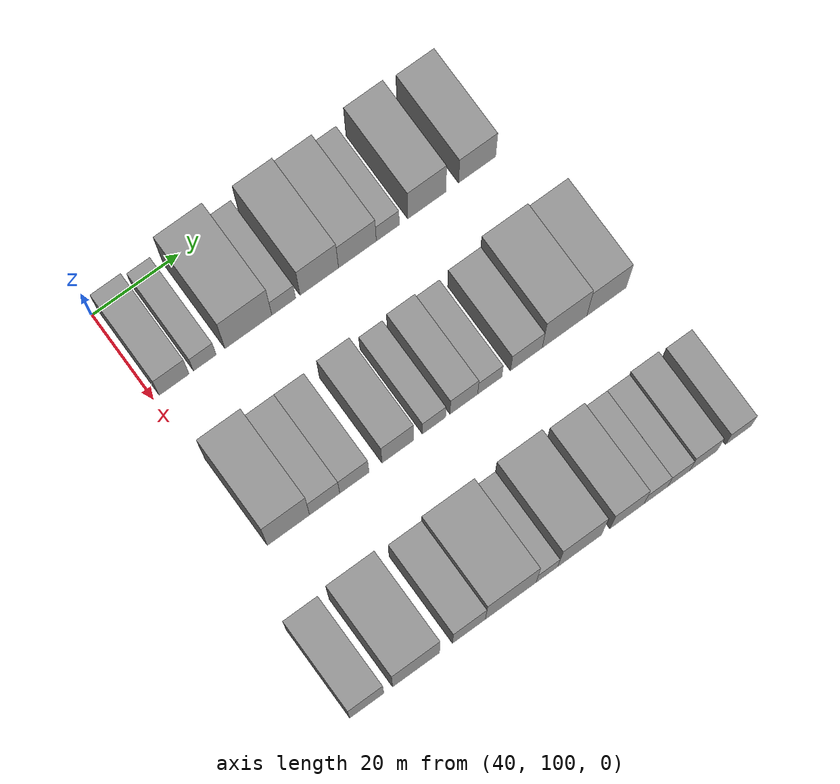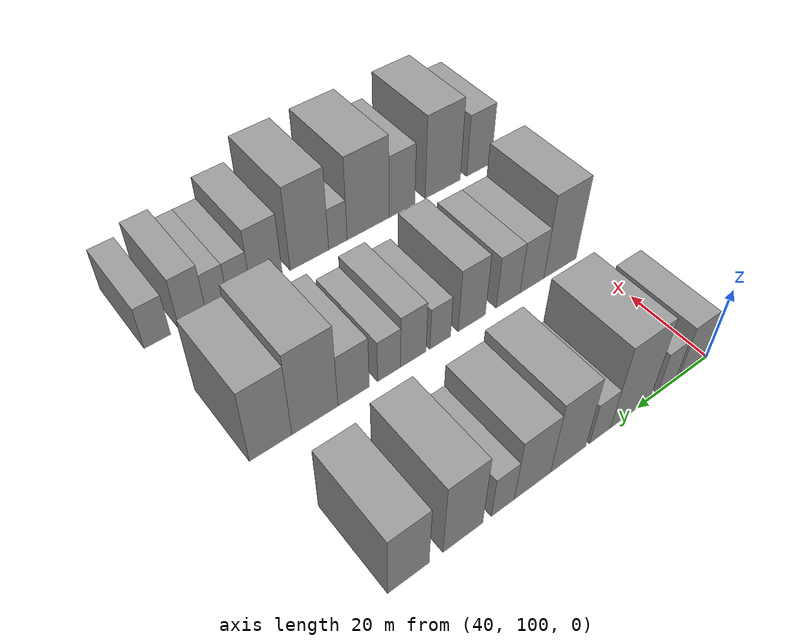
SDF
<sdf version="1.6">
 <world name="default">
  <model name="building_53">
   <static>1</static>
   <pose>50.0000 104.8211 0 0.000000 0.000000 0.000000</pose>
   <link name="link">
    <pose>0 0 7.50 0 0 0</pose>
    <collision name="collision"><geometry><box><size>20.0000 6.8952 15.0000</size></box></geometry></collision>
    <visual name="visual">
     <cast_shadows>0</cast_shadows>
     <geometry><box><size>20.0000 6.8952 15.0000</size></box></geometry>
     <material>
      <script>
       <uri>model://grey_wall/materials/scripts</uri>
       <uri>model://grey_wall/materials/textures</uri>
       <name>vrc/grey_wall</name>
      </script>
     </material>
    </visual>
   </link>
  </model>
  <model name="building_54">
   <static>1</static>
   <pose>50.0000 111.8903 0 0.000000 0.000000 0.000000</pose>
   <link name="link">
    <pose>0 0 6.00 0 0 0</pose>
    <collision name="collision"><geometry><box><size>20.0000 5.2433 12.0000</size></box></geometry></collision>
    <visual name="visual">
     <cast_shadows>0</cast_shadows>
     <geometry><box><size>20.0000 5.2433 12.0000</size></box></geometry>
     <material>
      <script>
       <uri>model://grey_wall/materials/scripts</uri>
       <uri>model://grey_wall/materials/textures</uri>
       <name>vrc/grey_wall</name>
      </script>
     </material>
    </visual>
   </link>
  </model>
  <model name="building_55">
   <static>1</static>
   <pose>50.0000 121.9380 0 0.000000 0.000000 0.000000</pose>
   <link name="link">
    <pose>0 0 12.00 0 0 0</pose>
    <collision name="collision"><geometry><box><size>20.0000 10.8521 24.0000</size></box></geometry></collision>
    <visual name="visual">
     <cast_shadows>0</cast_shadows>
     <geometry><box><size>20.0000 10.8521 24.0000</size></box></geometry>
     <material>
      <script>
       <uri>model://grey_wall/materials/scripts</uri>
       <uri>model://grey_wall/materials/textures</uri>
       <name>vrc/grey_wall</name>
      </script>
     </material>
    </visual>
   </link>
  </model>
  <model name="building_56">
   <static>1</static>
   <pose>50.0000 130.1348 0 0.000000 0.000000 0.000000</pose>
   <link name="link">
    <pose>0 0 6.00 0 0 0</pose>
    <collision name="collision"><geometry><box><size>20.0000 5.5414 12.0000</size></box></geometry></collision>
    <visual name="visual">
     <cast_shadows>0</cast_shadows>
     <geometry><box><size>20.0000 5.5414 12.0000</size></box></geometry>
     <material>
      <script>
       <uri>model://grey_wall/materials/scripts</uri>
       <uri>model://grey_wall/materials/textures</uri>
       <name>vrc/grey_wall</name>
      </script>
     </material>
    </visual>
   </link>
  </model>
  <model name="building_57">
   <static>1</static>
   <pose>50.0000 138.3855 0 0.000000 0.000000 0.000000</pose>
   <link name="link">
    <pose>0 0 10.50 0 0 0</pose>
    <collision name="collision"><geometry><box><size>20.0000 8.9601 21.0000</size></box></geometry></collision>
    <visual name="visual">
     <cast_shadows>0</cast_shadows>
     <geometry><box><size>20.0000 8.9601 21.0000</size></box></geometry>
     <material>
      <script>
       <uri>model://grey_wall/materials/scripts</uri>
       <uri>model://grey_wall/materials/textures</uri>
       <name>vrc/grey_wall</name>
      </script>
     </material>
    </visual>
   </link>
  </model>
  <model name="building_58">
   <static>1</static>
   <pose>50.0000 147.2667 0 0.000000 0.000000 0.000000</pose>
   <link name="link">
    <pose>0 0 9.00 0 0 0</pose>
    <collision name="collision"><geometry><box><size>20.0000 8.8022 18.0000</size></box></geometry></collision>
    <visual name="visual">
     <cast_shadows>0</cast_shadows>
     <geometry><box><size>20.0000 8.8022 18.0000</size></box></geometry>
     <material>
      <script>
       <uri>model://grey_wall/materials/scripts</uri>
       <uri>model://grey_wall/materials/textures</uri>
       <name>vrc/grey_wall</name>
      </script>
     </material>
    </visual>
   </link>
  </model>
  <model name="building_59">
   <static>1</static>
   <pose>50.0000 154.3495 0 0.000000 0.000000 0.000000</pose>
   <link name="link">
    <pose>0 0 6.00 0 0 0</pose>
    <collision name="collision"><geometry><box><size>20.0000 5.3634 12.0000</size></box></geometry></collision>
    <visual name="visual">
     <cast_shadows>0</cast_shadows>
     <geometry><box><size>20.0000 5.3634 12.0000</size></box></geometry>
     <material>
      <script>
       <uri>model://grey_wall/materials/scripts</uri>
       <uri>model://grey_wall/materials/textures</uri>
       <name>vrc/grey_wall</name>
      </script>
     </material>
    </visual>
   </link>
  </model>
  <model name="building_60">
   <static>1</static>
   <pose>50.0000 163.4841 0 0.000000 0.000000 0.000000</pose>
   <link name="link">
    <pose>0 0 10.50 0 0 0</pose>
    <collision name="collision"><geometry><box><size>20.0000 8.9057 21.0000</size></box></geometry></collision>
    <visual name="visual">
     <cast_shadows>0</cast_shadows>
     <geometry><box><size>20.0000 8.9057 21.0000</size></box></geometry>
     <material>
      <script>
       <uri>model://grey_wall/materials/scripts</uri>
       <uri>model://grey_wall/materials/textures</uri>
       <name>vrc/grey_wall</name>
      </script>
     </material>
    </visual>
   </link>
  </model>
  <model name="building_61">
   <static>1</static>
   <pose>50.0000 175.3051 0 0.000000 0.000000 0.000000</pose>
   <link name="link">
    <pose>0 0 9.00 0 0 0</pose>
    <collision name="collision"><geometry><box><size>20.0000 8.7363 18.0000</size></box></geometry></collision>
    <visual name="visual">
     <cast_shadows>0</cast_shadows>
     <geometry><box><size>20.0000 8.7363 18.0000</size></box></geometry>
     <material>
      <script>
       <uri>model://grey_wall/materials/scripts</uri>
       <uri>model://grey_wall/materials/textures</uri>
       <name>vrc/grey_wall</name>
      </script>
     </material>
    </visual>
   </link>
  </model>
  <model name="building_132">
   <static>1</static>
   <pose>85.0000 106.1662 0 0.000000 0.000000 0.000000</pose>
   <link name="link">
    <pose>0 0 12.00 0 0 0</pose>
    <collision name="collision"><geometry><box><size>20.0000 9.6960 24.0000</size></box></geometry></collision>
    <visual name="visual">
     <cast_shadows>0</cast_shadows>
     <geometry><box><size>20.0000 9.6960 24.0000</size></box></geometry>
     <material>
      <script>
       <uri>model://grey_wall/materials/scripts</uri>
       <uri>model://grey_wall/materials/textures</uri>
       <name>vrc/grey_wall</name>
      </script>
     </material>
    </visual>
   </link>
  </model>
  <model name="building_133">
   <static>1</static>
   <pose>85.0000 114.4758 0 0.000000 0.000000 0.000000</pose>
   <link name="link">
    <pose>0 0 7.50 0 0 0</pose>
    <collision name="collision"><geometry><box><size>20.0000 6.9232 15.0000</size></box></geometry></collision>
    <visual name="visual">
     <cast_shadows>0</cast_shadows>
     <geometry><box><size>20.0000 6.9232 15.0000</size></box></geometry>
     <material>
      <script>
       <uri>model://grey_wall/materials/scripts</uri>
       <uri>model://grey_wall/materials/textures</uri>
       <name>vrc/grey_wall</name>
      </script>
     </material>
    </visual>
   </link>
  </model>
  <model name="building_134">
   <static>1</static>
   <pose>85.0000 121.2999 0 0.000000 0.000000 0.000000</pose>
   <link name="link">
    <pose>0 0 7.50 0 0 0</pose>
    <collision name="collision"><geometry><box><size>20.0000 6.7249 15.0000</size></box></geometry></collision>
    <visual name="visual">
     <cast_shadows>0</cast_shadows>
     <geometry><box><size>20.0000 6.7249 15.0000</size></box></geometry>
     <material>
      <script>
       <uri>model://grey_wall/materials/scripts</uri>
       <uri>model://grey_wall/materials/textures</uri>
       <name>vrc/grey_wall</name>
      </script>
     </material>
    </visual>
   </link>
  </model>
  <model name="building_135">
   <static>1</static>
   <pose>85.0000 131.3365 0 0.000000 0.000000 0.000000</pose>
   <link name="link">
    <pose>0 0 9.00 0 0 0</pose>
    <collision name="collision"><geometry><box><size>20.0000 7.3485 18.0000</size></box></geometry></collision>
    <visual name="visual">
     <cast_shadows>0</cast_shadows>
     <geometry><box><size>20.0000 7.3485 18.0000</size></box></geometry>
     <material>
      <script>
       <uri>model://grey_wall/materials/scripts</uri>
       <uri>model://grey_wall/materials/textures</uri>
       <name>vrc/grey_wall</name>
      </script>
     </material>
    </visual>
   </link>
  </model>
  <model name="building_136">
   <static>1</static>
   <pose>85.0000 139.6968 0 0.000000 0.000000 0.000000</pose>
   <link name="link">
    <pose>0 0 6.00 0 0 0</pose>
    <collision name="collision"><geometry><box><size>20.0000 5.3721 12.0000</size></box></geometry></collision>
    <visual name="visual">
     <cast_shadows>0</cast_shadows>
     <geometry><box><size>20.0000 5.3721 12.0000</size></box></geometry>
     <material>
      <script>
       <uri>model://grey_wall/materials/scripts</uri>
       <uri>model://grey_wall/materials/textures</uri>
       <name>vrc/grey_wall</name>
      </script>
     </material>
    </visual>
   </link>
  </model>
  <model name="building_137">
   <static>1</static>
   <pose>85.0000 146.6025 0 0.000000 0.000000 0.000000</pose>
   <link name="link">
    <pose>0 0 7.50 0 0 0</pose>
    <collision name="collision"><geometry><box><size>20.0000 6.4392 15.0000</size></box></geometry></collision>
    <visual name="visual">
     <cast_shadows>0</cast_shadows>
     <geometry><box><size>20.0000 6.4392 15.0000</size></box></geometry>
     <material>
      <script>
       <uri>model://grey_wall/materials/scripts</uri>
       <uri>model://grey_wall/materials/textures</uri>
       <name>vrc/grey_wall</name>
      </script>
     </material>
    </visual>
   </link>
  </model>
  <model name="building_138">
   <static>1</static>
   <pose>85.0000 152.6341 0 0.000000 0.000000 0.000000</pose>
   <link name="link">
    <pose>0 0 6.00 0 0 0</pose>
    <collision name="collision"><geometry><box><size>20.0000 5.6239 12.0000</size></box></geometry></collision>
    <visual name="visual">
     <cast_shadows>0</cast_shadows>
     <geometry><box><size>20.0000 5.6239 12.0000</size></box></geometry>
     <material>
      <script>
       <uri>model://grey_wall/materials/scripts</uri>
       <uri>model://grey_wall/materials/textures</uri>
       <name>vrc/grey_wall</name>
      </script>
     </material>
    </visual>
   </link>
  </model>
  <model name="building_139">
   <static>1</static>
   <pose>85.0000 161.1597 0 0.000000 0.000000 0.000000</pose>
   <link name="link">
    <pose>0 0 7.50 0 0 0</pose>
    <collision name="collision"><geometry><box><size>20.0000 7.4273 15.0000</size></box></geometry></collision>
    <visual name="visual">
     <cast_shadows>0</cast_shadows>
     <geometry><box><size>20.0000 7.4273 15.0000</size></box></geometry>
     <material>
      <script>
       <uri>model://grey_wall/materials/scripts</uri>
       <uri>model://grey_wall/materials/textures</uri>
       <name>vrc/grey_wall</name>
      </script>
     </material>
    </visual>
   </link>
  </model>
  <model name="building_140">
   <static>1</static>
   <pose>85.0000 170.1048 0 0.000000 0.000000 0.000000</pose>
   <link name="link">
    <pose>0 0 12.00 0 0 0</pose>
    <collision name="collision"><geometry><box><size>20.0000 10.4631 24.0000</size></box></geometry></collision>
    <visual name="visual">
     <cast_shadows>0</cast_shadows>
     <geometry><box><size>20.0000 10.4631 24.0000</size></box></geometry>
     <material>
      <script>
       <uri>model://grey_wall/materials/scripts</uri>
       <uri>model://grey_wall/materials/textures</uri>
       <name>vrc/grey_wall</name>
      </script>
     </material>
    </visual>
   </link>
  </model>
  <model name="building_141">
   <static>1</static>
   <pose>85.0000 179.9588 0 0.000000 0.000000 0.000000</pose>
   <link name="link">
    <pose>0 0 10.50 0 0 0</pose>
    <collision name="collision"><geometry><box><size>20.0000 9.2449 21.0000</size></box></geometry></collision>
    <visual name="visual">
     <cast_shadows>0</cast_shadows>
     <geometry><box><size>20.0000 9.2449 21.0000</size></box></geometry>
     <material>
      <script>
       <uri>model://grey_wall/materials/scripts</uri>
       <uri>model://grey_wall/materials/textures</uri>
       <name>vrc/grey_wall</name>
      </script>
     </material>
    </visual>
   </link>
  </model>
  <model name="building_211">
   <static>1</static>
   <pose>120.0000 98.8750 0 0.000000 0.000000 0.000000</pose>
   <link name="link">
    <pose>0 0 9.00 0 0 0</pose>
    <collision name="collision"><geometry><box><size>20.0000 7.7567 18.0000</size></box></geometry></collision>
    <visual name="visual">
     <cast_shadows>0</cast_shadows>
     <geometry><box><size>20.0000 7.7567 18.0000</size></box></geometry>
     <material>
      <script>
       <uri>model://grey_wall/materials/scripts</uri>
       <uri>model://grey_wall/materials/textures</uri>
       <name>vrc/grey_wall</name>
      </script>
     </material>
    </visual>
   </link>
  </model>
  <model name="building_212">
   <static>1</static>
   <pose>120.0000 110.1004 0 0.000000 0.000000 0.000000</pose>
   <link name="link">
    <pose>0 0 12.00 0 0 0</pose>
    <collision name="collision"><geometry><box><size>20.0000 10.6940 24.0000</size></box></geometry></collision>
    <visual name="visual">
     <cast_shadows>0</cast_shadows>
     <geometry><box><size>20.0000 10.6940 24.0000</size></box></geometry>
     <material>
      <script>
       <uri>model://grey_wall/materials/scripts</uri>
       <uri>model://grey_wall/materials/textures</uri>
       <name>vrc/grey_wall</name>
      </script>
     </material>
    </visual>
   </link>
  </model>
  <model name="building_213">
   <static>1</static>
   <pose>120.0000 122.1936 0 0.000000 0.000000 0.000000</pose>
   <link name="link">
    <pose>0 0 9.00 0 0 0</pose>
    <collision name="collision"><geometry><box><size>20.0000 7.4925 18.0000</size></box></geometry></collision>
    <visual name="visual">
     <cast_shadows>0</cast_shadows>
     <geometry><box><size>20.0000 7.4925 18.0000</size></box></geometry>
     <material>
      <script>
       <uri>model://grey_wall/materials/scripts</uri>
       <uri>model://grey_wall/materials/textures</uri>
       <name>vrc/grey_wall</name>
      </script>
     </material>
    </visual>
   </link>
  </model>
  <model name="building_214">
   <static>1</static>
   <pose>120.0000 131.7925 0 0.000000 0.000000 0.000000</pose>
   <link name="link">
    <pose>0 0 12.00 0 0 0</pose>
    <collision name="collision"><geometry><box><size>20.0000 11.7053 24.0000</size></box></geometry></collision>
    <visual name="visual">
     <cast_shadows>0</cast_shadows>
     <geometry><box><size>20.0000 11.7053 24.0000</size></box></geometry>
     <material>
      <script>
       <uri>model://grey_wall/materials/scripts</uri>
       <uri>model://grey_wall/materials/textures</uri>
       <name>vrc/grey_wall</name>
      </script>
     </material>
    </visual>
   </link>
  </model>
  <model name="building_215">
   <static>1</static>
   <pose>120.0000 140.1438 0 0.000000 0.000000 0.000000</pose>
   <link name="link">
    <pose>0 0 6.00 0 0 0</pose>
    <collision name="collision"><geometry><box><size>20.0000 4.9973 12.0000</size></box></geometry></collision>
    <visual name="visual">
     <cast_shadows>0</cast_shadows>
     <geometry><box><size>20.0000 4.9973 12.0000</size></box></geometry>
     <material>
      <script>
       <uri>model://grey_wall/materials/scripts</uri>
       <uri>model://grey_wall/materials/textures</uri>
       <name>vrc/grey_wall</name>
      </script>
     </material>
    </visual>
   </link>
  </model>
  <model name="building_216">
   <static>1</static>
   <pose>120.0000 147.6975 0 0.000000 0.000000 0.000000</pose>
   <link name="link">
    <pose>0 0 12.00 0 0 0</pose>
    <collision name="collision"><geometry><box><size>20.0000 10.1102 24.0000</size></box></geometry></collision>
    <visual name="visual">
     <cast_shadows>0</cast_shadows>
     <geometry><box><size>20.0000 10.1102 24.0000</size></box></geometry>
     <material>
      <script>
       <uri>model://grey_wall/materials/scripts</uri>
       <uri>model://grey_wall/materials/textures</uri>
       <name>vrc/grey_wall</name>
      </script>
     </material>
    </visual>
   </link>
  </model>
  <model name="building_217">
   <static>1</static>
   <pose>120.0000 158.6886 0 0.000000 0.000000 0.000000</pose>
   <link name="link">
    <pose>0 0 9.00 0 0 0</pose>
    <collision name="collision"><geometry><box><size>20.0000 7.8719 18.0000</size></box></geometry></collision>
    <visual name="visual">
     <cast_shadows>0</cast_shadows>
     <geometry><box><size>20.0000 7.8719 18.0000</size></box></geometry>
     <material>
      <script>
       <uri>model://grey_wall/materials/scripts</uri>
       <uri>model://grey_wall/materials/textures</uri>
       <name>vrc/grey_wall</name>
      </script>
     </material>
    </visual>
   </link>
  </model>
  <model name="building_218">
   <static>1</static>
   <pose>120.0000 165.4037 0 0.000000 0.000000 0.000000</pose>
   <link name="link">
    <pose>0 0 6.00 0 0 0</pose>
    <collision name="collision"><geometry><box><size>20.0000 5.5583 12.0000</size></box></geometry></collision>
    <visual name="visual">
     <cast_shadows>0</cast_shadows>
     <geometry><box><size>20.0000 5.5583 12.0000</size></box></geometry>
     <material>
      <script>
       <uri>model://grey_wall/materials/scripts</uri>
       <uri>model://grey_wall/materials/textures</uri>
       <name>vrc/grey_wall</name>
      </script>
     </material>
    </visual>
   </link>
  </model>
  <model name="building_219">
   <static>1</static>
   <pose>120.0000 170.7517 0 0.000000 0.000000 0.000000</pose>
   <link name="link">
    <pose>0 0 6.00 0 0 0</pose>
    <collision name="collision"><geometry><box><size>20.0000 5.1376 12.0000</size></box></geometry></collision>
    <visual name="visual">
     <cast_shadows>0</cast_shadows>
     <geometry><box><size>20.0000 5.1376 12.0000</size></box></geometry>
     <material>
      <script>
       <uri>model://grey_wall/materials/scripts</uri>
       <uri>model://grey_wall/materials/textures</uri>
       <name>vrc/grey_wall</name>
      </script>
     </material>
    </visual>
   </link>
  </model>
  <model name="building_220">
   <static>1</static>
   <pose>120.0000 176.5154 0 0.000000 0.000000 0.000000</pose>
   <link name="link">
    <pose>0 0 7.50 0 0 0</pose>
    <collision name="collision"><geometry><box><size>20.0000 6.3898 15.0000</size></box></geometry></collision>
    <visual name="visual">
     <cast_shadows>0</cast_shadows>
     <geometry><box><size>20.0000 6.3898 15.0000</size></box></geometry>
     <material>
      <script>
       <uri>model://grey_wall/materials/scripts</uri>
       <uri>model://grey_wall/materials/textures</uri>
       <name>vrc/grey_wall</name>
      </script>
     </material>
    </visual>
   </link>
  </model>
  <model name="building_221">
   <static>1</static>
   <pose>120.0000 184.6888 0 0.000000 0.000000 0.000000</pose>
   <link name="link">
    <pose>0 0 6.00 0 0 0</pose>
    <collision name="collision"><geometry><box><size>20.0000 5.9571 12.0000</size></box></geometry></collision>
    <visual name="visual">
     <cast_shadows>0</cast_shadows>
     <geometry><box><size>20.0000 5.9571 12.0000</size></box></geometry>
     <material>
      <script>
       <uri>model://grey_wall/materials/scripts</uri>
       <uri>model://grey_wall/materials/textures</uri>
       <name>vrc/grey_wall</name>
      </script>
     </material>
    </visual>
   </link>
  </model>
 </world>
</sdf>
